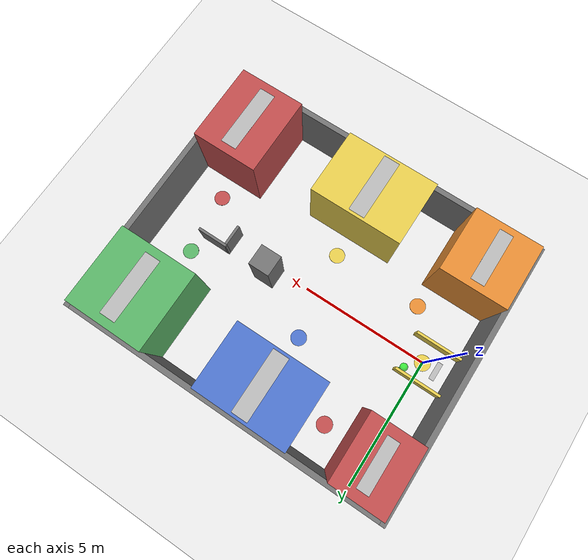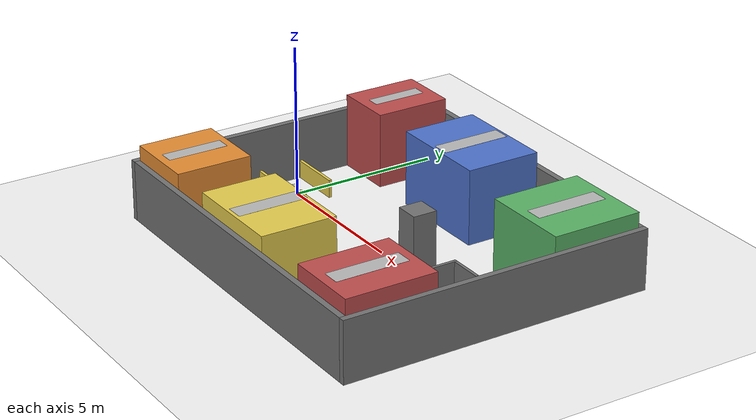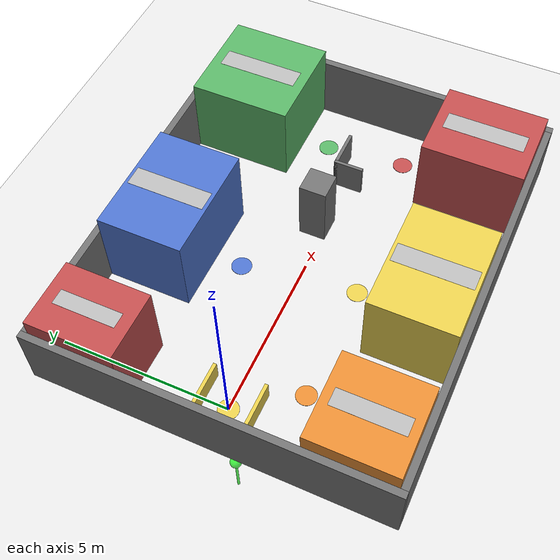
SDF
<?xml version="1.0"?>
<sdf version="1.6"><world name="mini_campus">
    <include><uri>model://sun</uri></include>
    <include><uri>model://ground_plane</uri></include>
    <plugin name="gazebo_ros_state" filename="libgazebo_ros_state.so"><ros><namespace>/gazebo</namespace></ros><update_rate>10.0</update_rate></plugin>
    <gui fullscreen="0"><camera name="user_camera"><pose>5 -9.5 11 0 0.85 1.5708</pose></camera></gui>
    <model name="wall_w"><static>true</static><pose>-1.100 0.000 1.000 0 0 0</pose><link name="link">
      <collision name="c"><geometry><box><size>0.200 10.400 2</size></box></geometry></collision>
      <visual name="v"><geometry><box><size>0.200 10.400 2</size></box></geometry><material><ambient>0.45 0.45 0.45 1</ambient><diffuse>0.45 0.45 0.45 1</diffuse></material></visual>
    </link></model>
    <model name="wall_e"><static>true</static><pose>11.100 0.000 1.000 0 0 0</pose><link name="link">
      <collision name="c"><geometry><box><size>0.200 10.400 2</size></box></geometry></collision>
      <visual name="v"><geometry><box><size>0.200 10.400 2</size></box></geometry><material><ambient>0.45 0.45 0.45 1</ambient><diffuse>0.45 0.45 0.45 1</diffuse></material></visual>
    </link></model>
    <model name="wall_n"><static>true</static><pose>5.000 5.100 1.000 0 0 0</pose><link name="link">
      <collision name="c"><geometry><box><size>12.000 0.200 2</size></box></geometry></collision>
      <visual name="v"><geometry><box><size>12.000 0.200 2</size></box></geometry><material><ambient>0.45 0.45 0.45 1</ambient><diffuse>0.45 0.45 0.45 1</diffuse></material></visual>
    </link></model>
    <model name="wall_s"><static>true</static><pose>5.000 -5.100 1.000 0 0 0</pose><link name="link">
      <collision name="c"><geometry><box><size>12.000 0.200 2</size></box></geometry></collision>
      <visual name="v"><geometry><box><size>12.000 0.200 2</size></box></geometry><material><ambient>0.45 0.45 0.45 1</ambient><diffuse>0.45 0.45 0.45 1</diffuse></material></visual>
    </link></model>
    <model name="bay_n"><static>true</static><pose>-0.100 0.750 0.300 0 0 0</pose><link name="link">
      <collision name="c"><geometry><box><size>1.800 0.100 0.6</size></box></geometry></collision>
      <visual name="v"><geometry><box><size>1.800 0.100 0.6</size></box></geometry><material><ambient>0.9 0.8 0.3 1</ambient><diffuse>0.9 0.8 0.3 1</diffuse></material></visual>
    </link></model>
    <model name="bay_s"><static>true</static><pose>-0.100 -0.750 0.300 0 0 0</pose><link name="link">
      <collision name="c"><geometry><box><size>1.800 0.100 0.6</size></box></geometry></collision>
      <visual name="v"><geometry><box><size>1.800 0.100 0.6</size></box></geometry><material><ambient>0.9 0.8 0.3 1</ambient><diffuse>0.9 0.8 0.3 1</diffuse></material></visual>
    </link></model>
    <model name="admin"><static>true</static><pose>0.000 3.750 1.250 0 0 0</pose><link name="link">
      <collision name="c"><geometry><box><size>2.000 2.500 2.5</size></box></geometry></collision>
      <visual name="v"><geometry><box><size>2.000 2.500 2.5</size></box></geometry><material><ambient>0.75 0.3 0.3 1</ambient><diffuse>0.75 0.3 0.3 1</diffuse></material></visual>
    </link></model>
    <model name="auditorium"><static>true</static><pose>4.250 3.750 1.250 0 0 0</pose><link name="link">
      <collision name="c"><geometry><box><size>3.500 2.500 2.5</size></box></geometry></collision>
      <visual name="v"><geometry><box><size>3.500 2.500 2.5</size></box></geometry><material><ambient>0.3 0.45 0.8 1</ambient><diffuse>0.3 0.45 0.8 1</diffuse></material></visual>
    </link></model>
    <model name="library"><static>true</static><pose>9.500 3.500 1.250 0 0 0</pose><link name="link">
      <collision name="c"><geometry><box><size>3.000 3.000 2.5</size></box></geometry></collision>
      <visual name="v"><geometry><box><size>3.000 3.000 2.5</size></box></geometry><material><ambient>0.35 0.7 0.4 1</ambient><diffuse>0.35 0.7 0.4 1</diffuse></material></visual>
    </link></model>
    <model name="hostel"><static>true</static><pose>0.250 -3.750 1.250 0 0 0</pose><link name="link">
      <collision name="c"><geometry><box><size>2.500 2.500 2.5</size></box></geometry></collision>
      <visual name="v"><geometry><box><size>2.500 2.500 2.5</size></box></geometry><material><ambient>0.9 0.55 0.2 1</ambient><diffuse>0.9 0.55 0.2 1</diffuse></material></visual>
    </link></model>
    <model name="cafeteria"><static>true</static><pose>4.750 -3.750 1.250 0 0 0</pose><link name="link">
      <collision name="c"><geometry><box><size>3.500 2.500 2.5</size></box></geometry></collision>
      <visual name="v"><geometry><box><size>3.500 2.500 2.5</size></box></geometry><material><ambient>0.9 0.8 0.3 1</ambient><diffuse>0.9 0.8 0.3 1</diffuse></material></visual>
    </link></model>
    <model name="department"><static>true</static><pose>9.750 -3.500 1.250 0 0 0</pose><link name="link">
      <collision name="c"><geometry><box><size>2.500 3.000 2.5</size></box></geometry></collision>
      <visual name="v"><geometry><box><size>2.500 3.000 2.5</size></box></geometry><material><ambient>0.75 0.3 0.3 1</ambient><diffuse>0.75 0.3 0.3 1</diffuse></material></visual>
    </link></model>
    <model name="pillar"><static>true</static><pose>6.500 0.300 1.000 0 0 0</pose><link name="link">
      <collision name="c"><geometry><box><size>0.800 0.800 2.0</size></box></geometry></collision>
      <visual name="v"><geometry><box><size>0.800 0.800 2.0</size></box></geometry><material><ambient>0.45 0.45 0.45 1</ambient><diffuse>0.45 0.45 0.45 1</diffuse></material></visual>
    </link></model>
    <model name="L_arm_h"><static>true</static><pose>8.800 0.450 0.500 0 0 0</pose><link name="link">
      <collision name="c"><geometry><box><size>1.200 0.100 1.0</size></box></geometry></collision>
      <visual name="v"><geometry><box><size>1.200 0.100 1.0</size></box></geometry><material><ambient>0.45 0.45 0.45 1</ambient><diffuse>0.45 0.45 0.45 1</diffuse></material></visual>
    </link></model>
    <model name="L_arm_v"><static>true</static><pose>8.250 0.050 0.500 0 0 0</pose><link name="link">
      <collision name="c"><geometry><box><size>0.100 0.900 1.0</size></box></geometry></collision>
      <visual name="v"><geometry><box><size>0.100 0.900 1.0</size></box></geometry><material><ambient>0.45 0.45 0.45 1</ambient><diffuse>0.45 0.45 0.45 1</diffuse></material></visual>
    </link></model>
    <model name="pad_home"><static>true</static><pose>0.0 0.0 0.005 0 0 0</pose><link name="link">
      <visual name="v"><geometry><cylinder><radius>0.3</radius><length>0.01</length></cylinder></geometry><material><ambient>0.9 0.8 0.3 1</ambient><diffuse>0.9 0.8 0.3 1</diffuse><emissive>0.36000000000000004 0.32000000000000006 0.12 1</emissive></material></visual>
    </link></model>
    <model name="pad_admin"><static>true</static><pose>1.8 3.75 0.005 0 0 0</pose><link name="link">
      <visual name="v"><geometry><cylinder><radius>0.3</radius><length>0.01</length></cylinder></geometry><material><ambient>0.75 0.3 0.3 1</ambient><diffuse>0.75 0.3 0.3 1</diffuse><emissive>0.30000000000000004 0.12 0.12 1</emissive></material></visual>
    </link></model>
    <model name="pad_auditorium"><static>true</static><pose>4.25 1.7 0.005 0 0 0</pose><link name="link">
      <visual name="v"><geometry><cylinder><radius>0.3</radius><length>0.01</length></cylinder></geometry><material><ambient>0.3 0.45 0.8 1</ambient><diffuse>0.3 0.45 0.8 1</diffuse><emissive>0.12 0.18000000000000002 0.32000000000000006 1</emissive></material></visual>
    </link></model>
    <model name="pad_library"><static>true</static><pose>9.5 1.2 0.005 0 0 0</pose><link name="link">
      <visual name="v"><geometry><cylinder><radius>0.3</radius><length>0.01</length></cylinder></geometry><material><ambient>0.35 0.7 0.4 1</ambient><diffuse>0.35 0.7 0.4 1</diffuse><emissive>0.13999999999999999 0.27999999999999997 0.16000000000000003 1</emissive></material></visual>
    </link></model>
    <model name="pad_cafeteria"><static>true</static><pose>4.75 -1.7 0.005 0 0 0</pose><link name="link">
      <visual name="v"><geometry><cylinder><radius>0.3</radius><length>0.01</length></cylinder></geometry><material><ambient>0.9 0.8 0.3 1</ambient><diffuse>0.9 0.8 0.3 1</diffuse><emissive>0.36000000000000004 0.32000000000000006 0.12 1</emissive></material></visual>
    </link></model>
    <model name="pad_department"><static>true</static><pose>9.75 -1.2 0.005 0 0 0</pose><link name="link">
      <visual name="v"><geometry><cylinder><radius>0.3</radius><length>0.01</length></cylinder></geometry><material><ambient>0.75 0.3 0.3 1</ambient><diffuse>0.75 0.3 0.3 1</diffuse><emissive>0.30000000000000004 0.12 0.12 1</emissive></material></visual>
    </link></model>
    <model name="pad_hostel"><static>true</static><pose>1.2 -1.7 0.005 0 0 0</pose><link name="link">
      <visual name="v"><geometry><cylinder><radius>0.3</radius><length>0.01</length></cylinder></geometry><material><ambient>0.9 0.55 0.2 1</ambient><diffuse>0.9 0.55 0.2 1</diffuse><emissive>0.36000000000000004 0.22000000000000003 0.08000000000000002 1</emissive></material></visual>
    </link></model>
    <model name="beacon"><pose>0 0 -5 0 0 0</pose><link name="link"><gravity>0</gravity><kinematic>true</kinematic>
      <visual name="pole"><pose>0 0 0.75 0 0 0</pose><geometry><cylinder><radius>0.04</radius><length>1.5</length></cylinder></geometry><material><ambient>0 1 0 1</ambient><diffuse>0 1 0 1</diffuse><emissive>0 0.8 0 1</emissive></material></visual>
      <visual name="ball"><pose>0 0 1.6 0 0 0</pose><geometry><sphere><radius>0.18</radius></sphere></geometry><material><ambient>0 1 0 1</ambient><diffuse>0 1 0 1</diffuse><emissive>0 1 0 1</emissive></material></visual>
      <visual name="ring"><pose>0 0 0.02 0 0 0</pose><geometry><cylinder><radius>0.45</radius><length>0.02</length></cylinder></geometry><material><ambient>0 1 0 0.5</ambient><diffuse>0 1 0 0.5</diffuse><emissive>0 0.6 0 1</emissive></material><transparency>0.4</transparency></visual>
    </link></model>
<!-- LABELS_BEGIN -->
  <model name="label_admin"><static>true</static><pose>0.0 3.75 2.52 0 0 -1.5708</pose><link name="link">
    <visual name="v"><cast_shadows>false</cast_shadows><geometry><plane><normal>0 0 1</normal><size>1.8 0.45</size></plane></geometry>
    <material><script><uri>file:///home/muzaffar/limo_ws/labels/materials/scripts</uri><uri>file:///home/muzaffar/limo_ws/labels/materials/textures</uri><name>Label/admin</name></script></material></visual>
  </link></model>
  <model name="label_auditorium"><static>true</static><pose>4.25 3.75 2.52 0 0 -1.5708</pose><link name="link">
    <visual name="v"><cast_shadows>false</cast_shadows><geometry><plane><normal>0 0 1</normal><size>2.3 0.6</size></plane></geometry>
    <material><script><uri>file:///home/muzaffar/limo_ws/labels/materials/scripts</uri><uri>file:///home/muzaffar/limo_ws/labels/materials/textures</uri><name>Label/auditorium</name></script></material></visual>
  </link></model>
  <model name="label_library"><static>true</static><pose>9.5 3.5 2.52 0 0 -1.5708</pose><link name="link">
    <visual name="v"><cast_shadows>false</cast_shadows><geometry><plane><normal>0 0 1</normal><size>2.4 0.6</size></plane></geometry>
    <material><script><uri>file:///home/muzaffar/limo_ws/labels/materials/scripts</uri><uri>file:///home/muzaffar/limo_ws/labels/materials/textures</uri><name>Label/library</name></script></material></visual>
  </link></model>
  <model name="label_hostel"><static>true</static><pose>0.25 -3.75 2.52 0 0 -1.5708</pose><link name="link">
    <visual name="v"><cast_shadows>false</cast_shadows><geometry><plane><normal>0 0 1</normal><size>2.0 0.5</size></plane></geometry>
    <material><script><uri>file:///home/muzaffar/limo_ws/labels/materials/scripts</uri><uri>file:///home/muzaffar/limo_ws/labels/materials/textures</uri><name>Label/hostel</name></script></material></visual>
  </link></model>
  <model name="label_cafeteria"><static>true</static><pose>4.75 -3.75 2.52 0 0 -1.5708</pose><link name="link">
    <visual name="v"><cast_shadows>false</cast_shadows><geometry><plane><normal>0 0 1</normal><size>2.3 0.6</size></plane></geometry>
    <material><script><uri>file:///home/muzaffar/limo_ws/labels/materials/scripts</uri><uri>file:///home/muzaffar/limo_ws/labels/materials/textures</uri><name>Label/cafeteria</name></script></material></visual>
  </link></model>
  <model name="label_department"><static>true</static><pose>9.75 -3.5 2.52 0 0 -1.5708</pose><link name="link">
    <visual name="v"><cast_shadows>false</cast_shadows><geometry><plane><normal>0 0 1</normal><size>2.4 0.6</size></plane></geometry>
    <material><script><uri>file:///home/muzaffar/limo_ws/labels/materials/scripts</uri><uri>file:///home/muzaffar/limo_ws/labels/materials/textures</uri><name>Label/department</name></script></material></visual>
  </link></model>
  <model name="label_home"><static>true</static><pose>-0.55 0.0 0.02 0 0 -1.5708</pose><link name="link">
    <visual name="v"><cast_shadows>false</cast_shadows><geometry><plane><normal>0 0 1</normal><size>0.7 0.2</size></plane></geometry>
    <material><script><uri>file:///home/muzaffar/limo_ws/labels/materials/scripts</uri><uri>file:///home/muzaffar/limo_ws/labels/materials/textures</uri><name>Label/home</name></script></material></visual>
  </link></model>
<!-- LABELS_END -->
</world></sdf>
